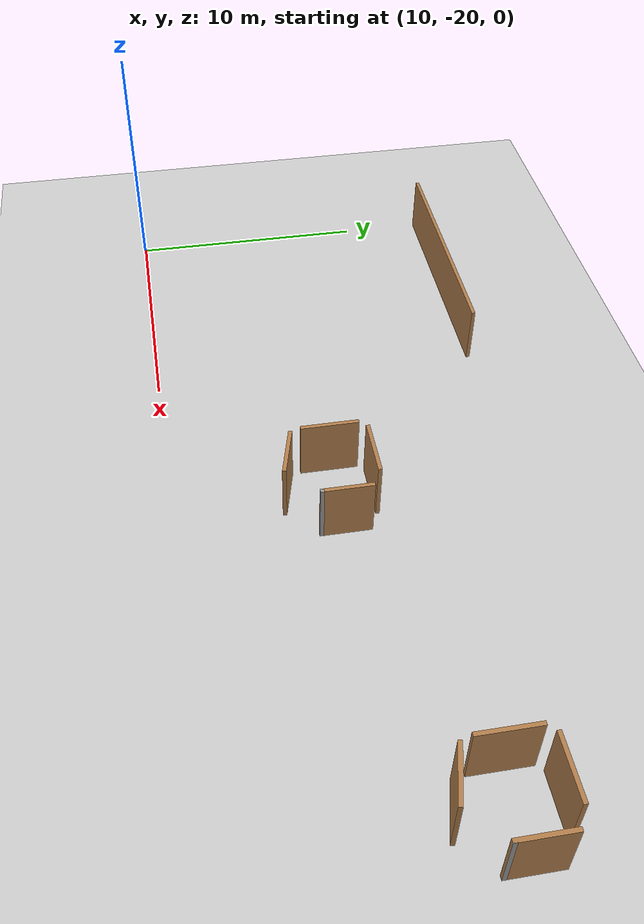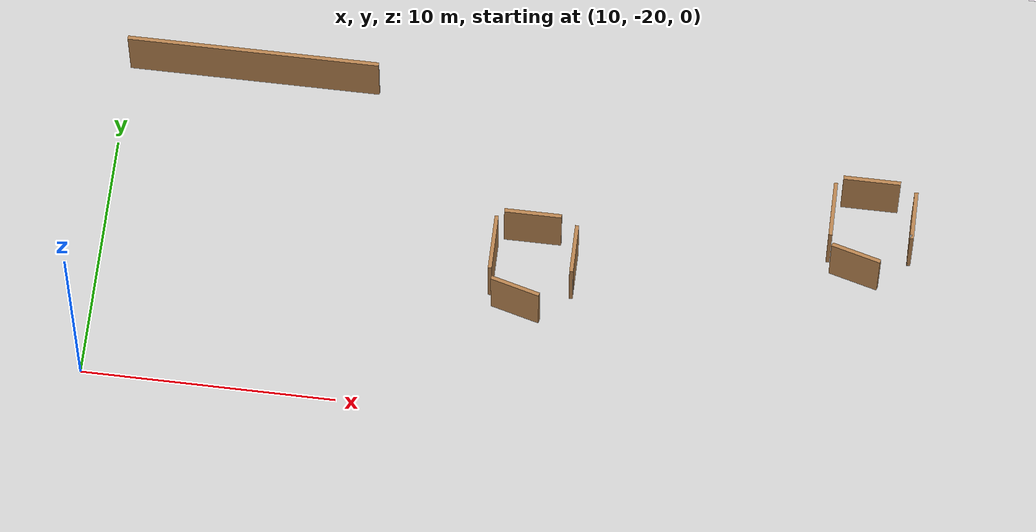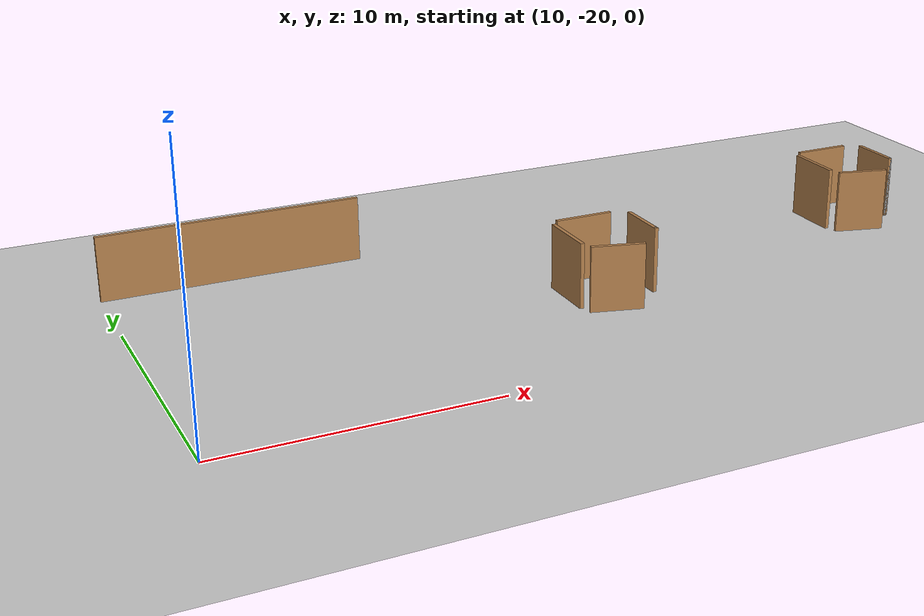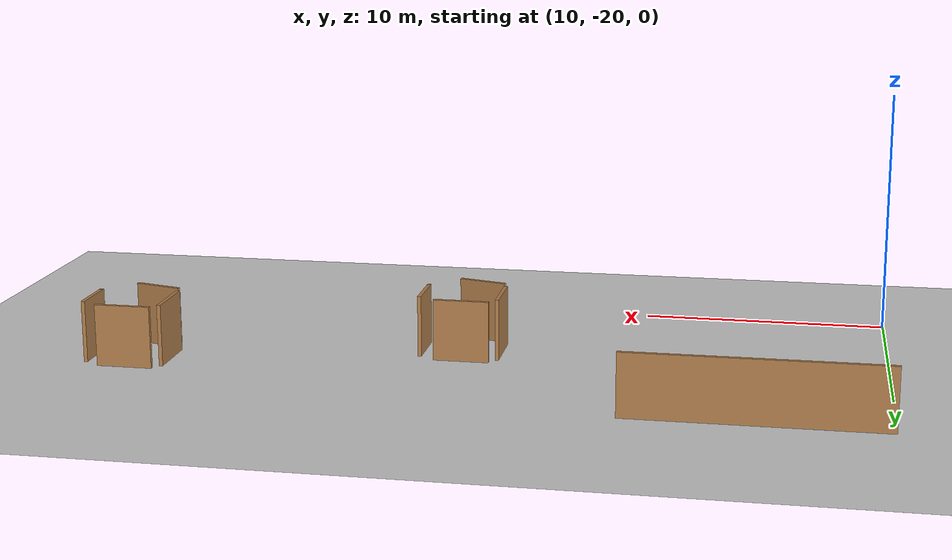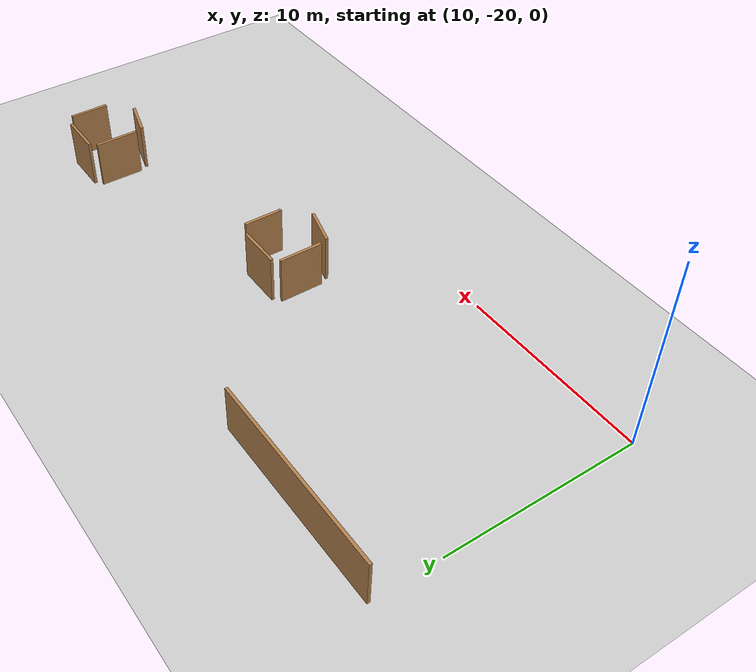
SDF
<sdf version="1.5">
 <world name="default">
  <model name="ground_plane">
   <static>1</static>
   <link name="link">
    <collision name="collision">
     <geometry><plane><normal>0 0 1</normal><size>100 100</size></plane></geometry>
     <surface><friction><ode><mu>100</mu><mu2>50</mu2></ode></friction></surface>
    </collision>
    <visual name="visual">
     <cast_shadows>0</cast_shadows>
     <geometry><plane><normal>0 0 1</normal><size>100 100</size></plane></geometry>
     <material>
      <script><uri>file://media/materials/scripts/gazebo.material</uri><name>Gazebo/Grey</name></script>
     </material>
    </visual>
   </link>
  </model>
  <model name="obs1_1">
   <pose>27 -14 0 0 -0 0</pose>
   <link name="Wall_10">
    <collision name="Wall_10_Collision">
     <geometry><box><size>2 0.15 2.5</size></box></geometry>
     <pose>0 0 1.25 0 -0 0</pose>
    </collision>
    <visual name="Wall_10_Visual">
     <pose>0 0 1.25 0 -0 0</pose>
     <geometry><box><size>2 0.15 2.5</size></box></geometry>
     <material>
      <script><uri>file://media/materials/scripts/gazebo.material</uri><name>Gazebo/Wood</name></script>
      <ambient>1 1 1 1</ambient>
     </material>
    </visual>
    <pose>-0.505188 -1.46687 0 0 0 -0.261799</pose>
   </link>
   <link name="Wall_2">
    <collision name="Wall_2_Collision">
     <geometry><box><size>2.25 0.15 2.5</size></box></geometry>
     <pose>0 0 1.25 0 -0 0</pose>
    </collision>
    <visual name="Wall_2_Visual">
     <pose>0 0 1.25 0 -0 0</pose>
     <geometry><box><size>2.25 0.15 2.5</size></box></geometry>
     <material>
      <script><uri>file://media/materials/scripts/gazebo.material</uri><name>Gazebo/Wood</name></script>
      <ambient>1 1 1 1</ambient>
     </material>
    </visual>
    <pose>-1.58039 0.313508 0 0 0 -1.5708</pose>
   </link>
   <link name="Wall_5">
    <collision name="Wall_5_Collision">
     <geometry><box><size>2.25 0.15 2.5</size></box></geometry>
     <pose>0 0 1.25 0 -0 0</pose>
    </collision>
    <visual name="Wall_5_Visual">
     <pose>0 0 1.25 0 -0 0</pose>
     <geometry><box><size>2.25 0.15 2.5</size></box></geometry>
     <material>
      <script><uri>file://media/materials/scripts/gazebo.material</uri><name>Gazebo/Wood</name></script>
      <ambient>1 1 1 1</ambient>
     </material>
    </visual>
    <pose>-0.185262 1.72313 0 0 -0 0</pose>
   </link>
   <link name="Wall_7">
    <collision name="Wall_7_Collision">
     <geometry><box><size>2 0.15 2.5</size></box></geometry>
     <pose>0 0 1.25 0 -0 0</pose>
    </collision>
    <visual name="Wall_7_Visual">
     <pose>0 0 1.25 0 -0 0</pose>
     <geometry><box><size>2 0.15 2.5</size></box></geometry>
     <material>
      <script><uri>file://media/materials/scripts/gazebo.material</uri><name>Gazebo/Wood</name></script>
      <ambient>1 1 1 1</ambient>
     </material>
    </visual>
    <pose>1.58039 0.398833 0 0 0 -1.5708</pose>
   </link>
   <link name="Wall_8">
    <collision name="Wall_8_Collision">
     <geometry><box><size>0.15 0.15 2.5</size></box></geometry>
     <pose>0 0 1.25 0 -0 0</pose>
    </collision>
    <visual name="Wall_8_Visual">
     <pose>0 0 1.25 0 -0 0</pose>
     <geometry><box><size>0.15 0.15 2.5</size></box></geometry>
     <material>
      <script><uri>file://media/materials/scripts/gazebo.material</uri><name>Gazebo/Grey</name></script>
      <ambient>1 1 1 1</ambient>
     </material>
    </visual>
    <pose>1.58039 -0.526167 0 0 -0 0</pose>
   </link>
   <static>1</static>
  </model>
  <model name="obs1_6">
   <pose>40 -11 0 0 -0 0</pose>
   <link name="Wall_10">
    <collision name="Wall_10_Collision">
     <geometry><box><size>2 0.15 2.5</size></box></geometry>
     <pose>0 0 1.25 0 -0 0</pose>
    </collision>
    <visual name="Wall_10_Visual">
     <pose>0 0 1.25 0 -0 0</pose>
     <geometry><box><size>2 0.15 2.5</size></box></geometry>
     <material>
      <script><uri>file://media/materials/scripts/gazebo.material</uri><name>Gazebo/Wood</name></script>
      <ambient>1 1 1 1</ambient>
     </material>
    </visual>
    <pose>-0.505188 -1.46687 0 0 0 -0.261799</pose>
   </link>
   <link name="Wall_2">
    <collision name="Wall_2_Collision">
     <geometry><box><size>2.25 0.15 2.5</size></box></geometry>
     <pose>0 0 1.25 0 -0 0</pose>
    </collision>
    <visual name="Wall_2_Visual">
     <pose>0 0 1.25 0 -0 0</pose>
     <geometry><box><size>2.25 0.15 2.5</size></box></geometry>
     <material>
      <script><uri>file://media/materials/scripts/gazebo.material</uri><name>Gazebo/Wood</name></script>
      <ambient>1 1 1 1</ambient>
     </material>
    </visual>
    <pose>-1.58039 0.313508 0 0 0 -1.5708</pose>
   </link>
   <link name="Wall_5">
    <collision name="Wall_5_Collision">
     <geometry><box><size>2.25 0.15 2.5</size></box></geometry>
     <pose>0 0 1.25 0 -0 0</pose>
    </collision>
    <visual name="Wall_5_Visual">
     <pose>0 0 1.25 0 -0 0</pose>
     <geometry><box><size>2.25 0.15 2.5</size></box></geometry>
     <material>
      <script><uri>file://media/materials/scripts/gazebo.material</uri><name>Gazebo/Wood</name></script>
      <ambient>1 1 1 1</ambient>
     </material>
    </visual>
    <pose>-0.185262 1.72313 0 0 -0 0</pose>
   </link>
   <link name="Wall_7">
    <collision name="Wall_7_Collision">
     <geometry><box><size>2 0.15 2.5</size></box></geometry>
     <pose>0 0 1.25 0 -0 0</pose>
    </collision>
    <visual name="Wall_7_Visual">
     <pose>0 0 1.25 0 -0 0</pose>
     <geometry><box><size>2 0.15 2.5</size></box></geometry>
     <material>
      <script><uri>file://media/materials/scripts/gazebo.material</uri><name>Gazebo/Wood</name></script>
      <ambient>1 1 1 1</ambient>
     </material>
    </visual>
    <pose>1.58039 0.398833 0 0 0 -1.5708</pose>
   </link>
   <link name="Wall_8">
    <collision name="Wall_8_Collision">
     <geometry><box><size>0.15 0.15 2.5</size></box></geometry>
     <pose>0 0 1.25 0 -0 0</pose>
    </collision>
    <visual name="Wall_8_Visual">
     <pose>0 0 1.25 0 -0 0</pose>
     <geometry><box><size>0.15 0.15 2.5</size></box></geometry>
     <material>
      <script><uri>file://media/materials/scripts/gazebo.material</uri><name>Gazebo/Grey</name></script>
      <ambient>1 1 1 1</ambient>
     </material>
    </visual>
    <pose>1.58039 -0.526167 0 0 -0 0</pose>
   </link>
   <static>1</static>
  </model>
  <model name="wall-10m-ofoghi">
   <pose>15 -6.54766 0 0 -0 0</pose>
   <link name="Wall_22">
    <collision name="Wall_22_Collision">
     <geometry><box><size>10 0.15 2.5</size></box></geometry>
     <pose>0 0 1.25 0 -0 0</pose>
    </collision>
    <visual name="Wall_22_Visual">
     <pose>0 0 1.25 0 -0 0</pose>
     <geometry><box><size>10 0.15 2.5</size></box></geometry>
     <material>
      <script><uri>file://media/materials/scripts/gazebo.material</uri><name>Gazebo/Wood</name></script>
      <ambient>1 1 1 1</ambient>
     </material>
    </visual>
   </link>
   <static>1</static>
  </model>
 </world>
</sdf>
